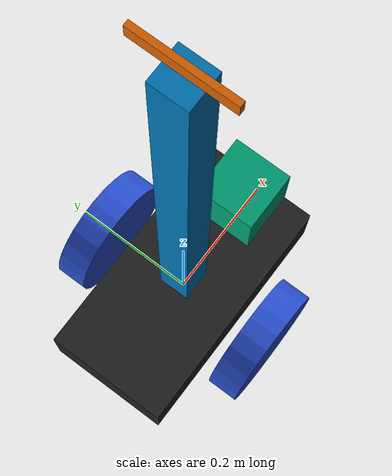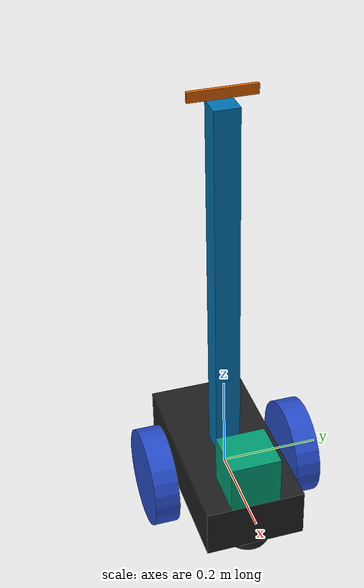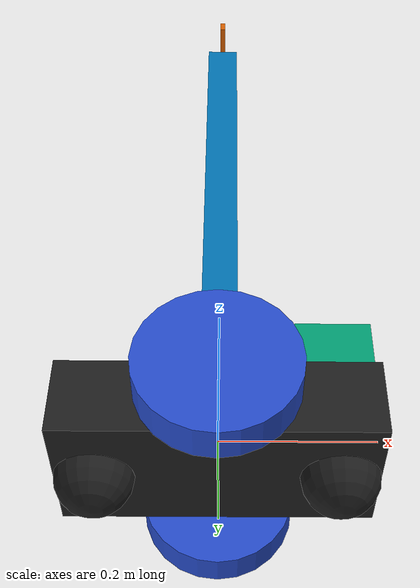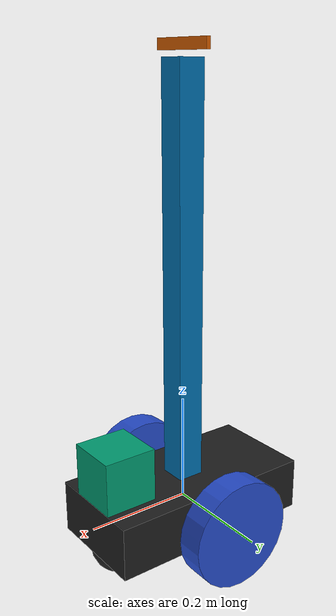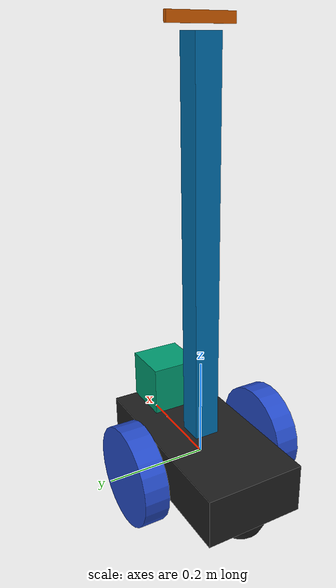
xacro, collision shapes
<?xml version="1.0"?>
<robot name="slam_project" xmlns:xacro="http://www.ros.org/wiki/xacro">

    <xacro:include filename="$(find slam_project)/urdf/material.xacro" />
    <xacro:include filename="$(find slam_project)/urdf/robot.gazebo" />
    <xacro:include filename="$(find slam_project)/urdf/robot.xacro" />

</robot>

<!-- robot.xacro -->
<robot name="slam_project" xmlns:xacro="http://www.ros.org/wiki/xacro">
  <xacro:include filename="$(find slam_project)/urdf/realsense-RS200.macro.xacro"/>
  <link name="robot_footprint"></link>

  <joint name="robot_footprint_joint" type="fixed">
    <origin xyz="0 0 0" rpy="0 0 0" />
    <parent link="robot_footprint"/>
    <child link="chassis" />
  </joint>

  <link name='chassis'>
    <pose>0 0 0.1 0 0 0</pose>

    <inertial>
      <mass value="15.0"/>
      <origin xyz="0.0 0 0" rpy=" 0 0 0"/>
      <inertia
          ixx="0.1" ixy="0" ixz="0"
          iyy="0.1" iyz="0"
          izz="0.1"
      />
    </inertial>

    <collision name='collision'>
      <origin xyz="0 0 0" rpy=" 0 0 0"/>
      <geometry>
        <box size=".4 .2 .1"/>
      </geometry>
    </collision>

    <visual name='chassis_visual'>
      <origin xyz="0 0 0" rpy=" 0 0 0"/>
      <geometry>
        <box size=".4 .2 .1"/>
      </geometry>
      <material name="black"/>
    </visual>

    <collision name='back_caster_collision'>
      <origin xyz="-0.15 0 -0.05" rpy=" 0 0 0"/>
      <geometry>
        <sphere radius="0.0499"/>
      </geometry>
    </collision>

    <visual name='back_caster_visual'>
      <origin xyz="-0.15 0 -0.05" rpy=" 0 0 0"/>
      <geometry>
        <sphere radius="0.05"/>
      </geometry>
    </visual>

    <collision name='front_caster_collision'>
      <origin xyz="0.15 0 -0.05" rpy=" 0 0 0"/>
      <geometry>
        <sphere radius="0.0499"/>
      </geometry>
    </collision>

    <visual name='front_caster_visual'>
      <origin xyz="0.15 0 -0.05" rpy=" 0 0 0"/>
      <geometry>
        <sphere radius="0.05"/>
      </geometry>
    </visual>

  </link>
  <xacro:macro name="default_inertial" params="mass">
      <inertial>
              <mass value="${mass}" />
              <inertia ixx="0.1" ixy="0.0" ixz="0.0"
                    iyy="0.1" iyz="0.0"
                    izz="0.1" />
      </inertial>
  </xacro:macro>

  <xacro:property name="wheelradius" value="0.1" />
  <xacro:property name="wheellength" value="0.05" />
  <xacro:property name="mass" value="5.0" />
  <xacro:macro name="wheel" params="prefix reflect">
      <link name="${prefix}_wheel">
          <visual>
              <geometry>
                  <cylinder radius="${wheelradius}" length="${wheellength}"/>
              </geometry>
              <origin xyz="0 0 0" rpy="0 ${pi/2} ${pi/2}"/>
              <material name="blue"/>
          </visual>
          <collision>
              <geometry>
                  <cylinder radius="${wheelradius}" length="${wheellength}"/>
              </geometry>
              <origin xyz="0 0 0" rpy="0 ${pi/2} ${pi/2}"/>
          </collision>
          <xacro:default_inertial mass="5.0"/>

      </link>

      <joint name="${prefix}_wheel_hinge" type="continuous">
          <parent link="chassis"/>
          <child link="${prefix}_wheel"/>
          <axis xyz="0 1 0" rpy="0 0 0"/>
          <origin xyz="0 ${reflect*0.15} 0" rpy="0 0 0"/>
          <limit effort="10000" velocity="1000"/>
          <dynamics damping="1.0" friction="1.0"/>
      </joint>
      <!-- A bunch of stuff cut -->
  </xacro:macro>

  <xacro:wheel prefix="right" reflect="-1" />
  <xacro:wheel prefix="left" reflect="1" />

  <link name="camera_support_link">
		<visual name="camera_support_visual">
			<origin xyz="0 0 0" rpy="0 0 0"/>
			<geometry>
				<box size=".05 .05 .8"/>
			</geometry>
		</visual>

		<collision name="camera_support_collision">
			<origin xyz="0 0 0" rpy="0 0 0"/>
			<geometry>
				<box size="0.05 0.05 0.8"/>
			</geometry>
		</collision>

		<inertial>
        <mass value="0.1"/>
        <origin xyz="0 0 0" rpy="0 0 0"/>
        <inertia
                ixx="1e-6" ixy="0" ixz="0"
                iyy="1e-6" iyz="0"
                izz="1e-6"
        />
    </inertial>
	</link>
    <!-- Create camera instance -->
    <xacro:realsense-rs200/>

  <joint name="camera_support_joint" type="fixed">
    <origin xyz="0.0 0.0 0.4" rpy="0.0 0.0 0.0"/>
    <parent link="chassis"/>
    <child link="camera_support_link"/>
    <limit effort="1000" velocity="100"/>
  </joint>

  <joint name="camera_joint" type="fixed">
    <origin xyz="0.0 0.0 0.42" rpy="0.0 0.0 0.0"/>
    <parent link="camera_support_link"/>
    <child link="rs200_camera"/>
    <limit effort="1000" velocity="100"/>
  </joint>

  <link name="hokuyo">
		<visual name="hokuyo_visual">
			<origin xyz="0 0 0" rpy="0 0 0"/>
			<geometry>
				<mesh filename="package://slam_project/meshes/hokuyo.dae"/>
			</geometry>
		</visual>

		<collision name="hokuyo_collision">
			<origin xyz="0 0 0" rpy="0 0 0"/>
			<geometry>
				<box size="0.1 0.1 0.1"/>
			</geometry>
		</collision>

		<inertial>
        <mass value="0.1"/>
        <origin xyz="0 0 0" rpy="0 0 0"/>
        <inertia
                ixx="1e-6" ixy="0" ixz="0"
                iyy="1e-6" iyz="0"
                izz="1e-6"
        />
    </inertial>
	</link>

	<joint name="hokuyo_joint" type="fixed">
		<origin xyz="0.15 0 0.1" rpy="0 0 0"/>
		<parent link="chassis"/>
		<child link="hokuyo"/>
	</joint>

</robot>

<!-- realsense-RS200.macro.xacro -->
<robot xmlns:xacro="http://ros.org/wiki/xacro">
<xacro:macro name="realsense-rs200" params="parent_link:='rs200_camera' origin_x:=0 origin_y:=0 origin_z:=0">

    <!-- Camera link -->
    <link name="rs200_camera">
        <visual>
            <origin rpy="${3*pi/2} 0 ${3*pi/2}" xyz="0.01 0 0"/>
            <geometry>
                <mesh filename="package://slam_project/meshes/d435.dae"/>
            </geometry>
        </visual>
        <collision>
            <geometry>
                <box size="0.0078 0.130 0.0192"/>
            </geometry>
        </collision>
        <inertial>
            <mass value="0.0615752"/>
            <origin rpy="0 0 0" xyz="0 0 0"/>
            <inertia ixx="9.108e-05"
                     ixy="0"
                     ixz="0"
                     iyy="2.51e-06"
                     iyz="0"
                     izz="8.931e-05"
            />
        </inertial>
    </link>

    <!-- Virtual links representing the cameras positons and orientations-->
    <link name="color" />
    <link name="depth" />
    <link name="ired1" />
    <link name="ired2" />

    <!-- Joints positioning the virtual links with respect to the camera main link-->
    <joint name="color_joint" type="fixed">
        <parent link="rs200_camera" />
        <child link="color" />
        <!-- The default position is changed since in Rviz the cloud depth axis is Z not X-->
        <origin xyz="0 -0.046 0.004" rpy="${pi/2} ${pi} ${pi/2}"/>
    </joint>

    <joint name="depth_joint" type="fixed">
        <parent link="rs200_camera" />
        <child link="depth" />
        <origin xyz="0 -0.03 0.004" rpy="0 0 0"/>
    </joint>

    <joint name="ired1_joint" type="fixed">
        <parent link="rs200_camera" />
        <child link="ired1" />
        <origin xyz="0 -0.06 0.004" rpy="0 0 0"/>
    </joint>

    <joint name="ired2_joint" type="fixed">
        <parent link="rs200_camera" />
        <child link="ired2" />
        <origin xyz="0 0.01 0.004" rpy="0 0 0"/>
    </joint>

<!-- GAZEBO DEFINITIONS ***************************************-->

    <!-- Load plugin to the model ("robot" in urdf format)-->
    <gazebo>
        <plugin name="realsense_plugin" filename="librealsense_gazebo_plugin.so"/>
    </gazebo>

    <!-- Load parameters to model's main link-->
    <gazebo reference="${parent_link}">
        <self_collide>0</self_collide>
        <enable_wind>0</enable_wind>
        <kinematic>0</kinematic>
        <gravity>1</gravity>
        <mu2>1</mu2>
        <fdir1>0 0 0</fdir1>
        <kp>1e+13</kp>
        <kd>1</kd>

        <sensor name="color" type="camera">
            <pose frame="">${origin_x + 0} ${origin_y - 0.046} ${origin_z + 0.004} 0 0 0</pose>
            <camera name="__default__">
            <horizontal_fov>1.047</horizontal_fov>
            <image>
                <width>640</width>
                <height>480</height>
                <format>RGB_INT8</format>
            </image>
            <clip>
                <near>0.1</near>
                <far>100</far>
            </clip>
            <noise>
                <type>gaussian</type>
                <mean>0.0</mean>
                <stddev>0.007</stddev>
            </noise>
            </camera>
            <always_on>1</always_on>
            <update_rate>60</update_rate>
            <visualize>1</visualize>
        </sensor>
        <sensor name="ired1" type="camera">
            <pose frame="">${origin_x + 0} ${origin_y - 0.06} ${origin_z + 0.004} 0 0 0</pose>
            <camera name="__default__">
            <horizontal_fov>1.047</horizontal_fov>
            <image>
                <width>640</width>
                <height>480</height>
                <format>L_INT8</format>
            </image>
            <clip>
                <near>0.1</near>
                <far>100</far>
            </clip>
            <noise>
                <type>gaussian</type>
                <mean>0.0</mean>
                <stddev>0.05</stddev>
            </noise>
            </camera>
            <always_on>1</always_on>
            <update_rate>60</update_rate>
            <visualize>0</visualize>
        </sensor>
        <sensor name="ired2" type="camera">
            <pose frame="">${origin_x + 0} ${origin_y + 0.01} ${origin_z + 0.004} 0 0 0</pose>
            <camera name="__default__">
            <horizontal_fov>1.047</horizontal_fov>
            <image>
                <width>640</width>
                <height>480</height>
                <format>L_INT8</format>
            </image>
            <clip>
                <near>0.1</near>
                <far>100</far>
            </clip>
            <noise>
                <type>gaussian</type>
                <mean>0.0</mean>
                <stddev>0.05</stddev>
            </noise>
            </camera>
            <always_on>1</always_on>
            <update_rate>60</update_rate>
            <visualize>0</visualize>
        </sensor>
        <sensor name="depth" type="depth">
            <pose frame="">${origin_x + 0} ${origin_y - 0.03} ${origin_z + 0.004} 0 0 0</pose>
            <camera name="__default__">
            <horizontal_fov>1.047</horizontal_fov>
            <image>
                    <width>640</width>
                    <height>480</height>
            </image>
            <clip>
                    <near>0.1</near>
                    <far>100</far>
            </clip>
            <noise>
                    <type>gaussian</type>
                    <mean>0.0</mean>
                    <stddev>0.100</stddev>
            </noise>
            </camera>
            <always_on>1</always_on>
            <update_rate>60</update_rate>
            <visualize>0</visualize>
        </sensor>
    </gazebo>

</xacro:macro>
</robot>
